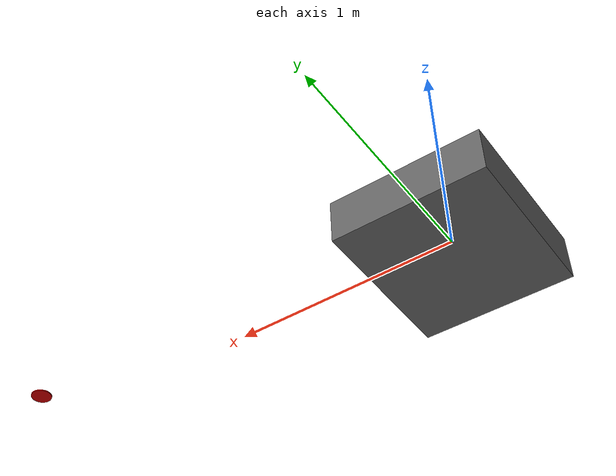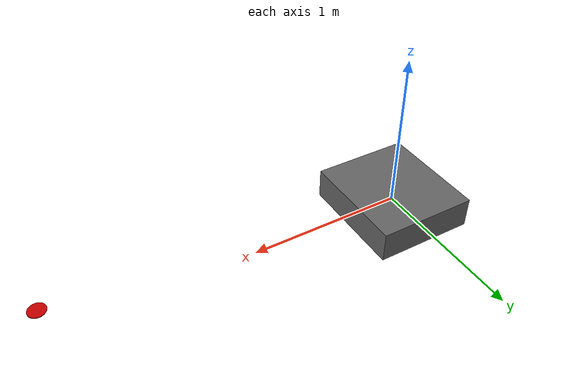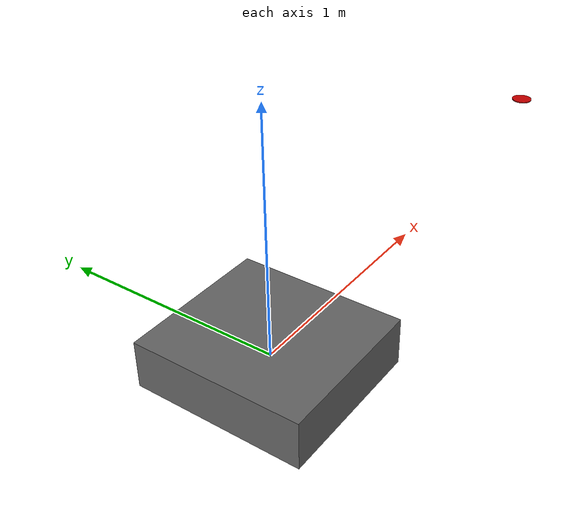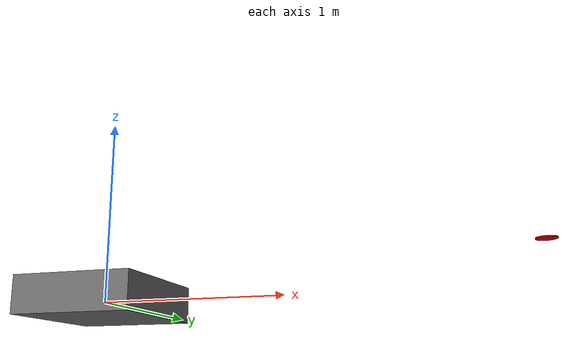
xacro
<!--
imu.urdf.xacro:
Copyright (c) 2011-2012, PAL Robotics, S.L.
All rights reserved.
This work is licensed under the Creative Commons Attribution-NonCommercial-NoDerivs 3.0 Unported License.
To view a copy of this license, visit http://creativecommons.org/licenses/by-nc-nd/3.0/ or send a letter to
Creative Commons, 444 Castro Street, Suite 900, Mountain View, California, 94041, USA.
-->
<?xml version="1.0" ?>
<robot name="arch_angel" xmlns:xacro="http://ros.org/wiki/xacro">
  <xacro:include filename="$(find yunshen_robot_description)/urdf/common_properties.xacro"/>
  <xacro:include filename="$(find yunshen_robot_description)/urdf/sensors/sick_tim571_laser.urdf.xacro" />
  <xacro:include filename="$(find yunshen_robot_description)/urdf/sensors/imu.urdf.xacro"/>

    <xacro:property name="base_link_length" value="0.648" />
    <xacro:property name="base_link_width" value="0.714"/>
    <xacro:property name="base_link_height" value="0.2"/>
    <xacro:property name="base_link_mass" value="0.3"/>
    <xacro:property name="wheel_track" value="0.53575"/>
    <xacro:property name="wheel_radius" value="0.084"/>
    <xacro:property name="wheel_width" value="0.05"/>
    <xacro:property name="wheel_separation" value="0.53575"/>
    <xacro:property name="wheel_torque"     value="20.0"/>
    <xacro:property name="wheel_velocity"   value="2.0"/>
    <xacro:property name="PI" value="3.1415926" />
  <link name="base_footprint"/>

  <joint name="base_joint" type="fixed">
    <parent link="base_footprint"/>
    <child link="base_link"/>
    <origin xyz="0.0 0.0 0.010" rpy="0 0 0"/>
  </joint>

  <link name="base_link">
    <visual>
      <origin xyz="0 0 0.0" rpy="0 0 0"/>
      <geometry>
         <box size="${base_link_length} ${base_link_width} ${base_link_height}"/>
      </geometry>
      <material name="light_black"/>
    </visual>

    <collision>
      <origin xyz="0 0 0" rpy="0 0 0"/>
      <geometry>
        <box size="${base_link_length} ${base_link_width} ${base_link_height}"/>
      </geometry>
    </collision>

    <inertial>
      <origin xyz="0 0 0" rpy="0 0 0"/>
      <mass value="8.2573504e-01"/>
      <inertia ixx="2.2124416e-03" ixy="-1.2294101e-05" ixz="3.4938785e-05"
               iyy="2.1193702e-03" iyz="-5.0120904e-06"
               izz="2.0064271e-03" />
    </inertial>
  </link>

<xacro:imu_sensor name="imu" parent="base_link" update_rate="100.0">
  <origin xyz="0 0 0" rpy="0 ${0} ${0}"/>
</xacro:imu_sensor>

<!--  suzhou juse chache: xyz="0.95 0 ${base_link_height/2 + 0.1} -->
<!--  shanghai kiva test car: xyz="0.14 0 ${base_link_height/2 + 0.1} -->
<joint name="lidar_joint" type="fixed">
  <parent link="base_link"/>
  <child link="base_scan"/>
  <origin xyz="2.231 0.0 ${base_link_height/2 + 0.1}" rpy="0 0 0.0"/>
</joint>

<link name="base_scan">
<visual>
    <origin xyz="0 0 0.0" rpy="0 0 0"/>
    <geometry>
    <cylinder radius="0.05" length="0.005"/>
    </geometry>
    <material name="red"/>
</visual>
</link>

<joint name="base_scan_joint" type="fixed">
  <parent link="base_scan"/>
  <child link="laser"/>
  <origin xyz="0.0 0.0 0.0" rpy="0 0 0.0"/>
</joint>

<link name="laser">
<visual>
    <origin xyz="0 0 0.0" rpy="0 0 0"/>
    <geometry>
    <cylinder radius="0.05" length="0.005"/>
    </geometry>
    <material name="red"/>
</visual>
</link>

</robot>

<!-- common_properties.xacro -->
<robot name="xacro_properties" xmlns:xacro="http://ros.org/wiki/xacro">

  <!-- Init colour -->
  <material name="black">
      <color rgba="0.0 0.0 0.0 1.0"/>
  </material>

  <material name="dark">
    <color rgba="0.3 0.3 0.3 1.0"/>
  </material>
  <material name="light_black">
    <color rgba="0.4 0.4 0.4 1.0"/>
  </material>

  <material name="blue">
    <color rgba="0.0 0.0 0.8 1.0"/>
  </material>

  <material name="green">
    <color rgba="0.0 0.8 0.0 1.0"/>
  </material>

  <material name="grey">
    <color rgba="0.5 0.5 0.5 1.0"/>
  </material>

  <material name="orange">
    <color rgba="${255/255} ${108/255} ${10/255} 1.0"/>
  </material>

  <material name="brown">
    <color rgba="${222/255} ${207/255} ${195/255} 1.0"/>
  </material>

  <material name="red">
    <color rgba="0.8 0.0 0.0 1.0"/>
  </material>

  <material name="white">
    <color rgba="1.0 1.0 1.0 1.0"/>
  </material>

  <property name="deg_to_rad" value="0.01745329251994329577" />
</robot>

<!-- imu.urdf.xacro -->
<robot xmlns:xacro="http://ros.org/wiki/xacro">

  <xacro:macro name="imu_sensor" params="name parent *origin update_rate">
    <link name="${name}_link">
      <inertial>
        <mass value="0.01"/>
        <origin xyz="0 0 0"/>
        <inertia ixx="0.000001" ixy="0" ixz="0" iyy="0.000001" iyz="0" izz="0.000001"/>
      </inertial>
    </link>
    <joint name="${name}_joint" type="fixed">
      <parent link="${parent}"/>
      <child link="${name}_link"/>
      <insert_block name="origin"/>
    </joint>

    <gazebo>
      <plugin name="imu_plugin" filename="libhector_gazebo_ros_imu.so">
        <alwaysOn>true</alwaysOn>
        <bodyName>imu_link</bodyName>
        <topicName>imu</topicName>
        <serviceName>imu_service</serviceName>
        <gaussianNoise>0.0</gaussianNoise>
        <updateRate>200</updateRate>
        <imu>
          <noise>
            <type>gaussian</type>
            <rate>
              <mean>0.0</mean>
              <stddev>2e-4</stddev>
              <bias_mean>0.0000075</bias_mean>
              <bias_stddev>0.0000008</bias_stddev>
            </rate>
            <accel>
              <mean>0.0</mean>
              <stddev>1.7e-2</stddev>
              <bias_mean>0.1</bias_mean>
              <bias_stddev>0.001</bias_stddev>
            </accel>
          </noise>
        </imu>
      </plugin>
    </gazebo>
  </xacro:macro>

</robot>
